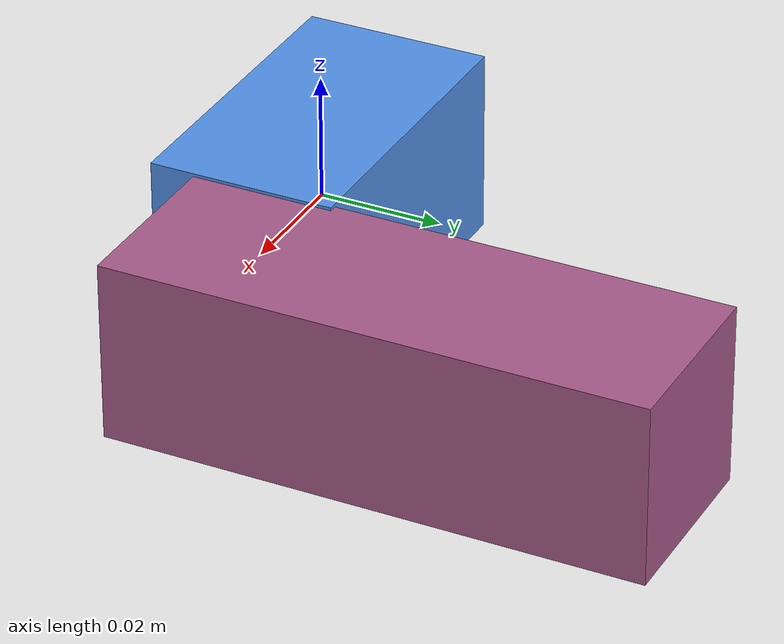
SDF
<sdf version="1.4"><world name="default"><model name="object0"><link name="link1"><pose>0 0 0 0 0 0</pose><inertial><pose>0 0 0 0 0 0</pose><mass>0.028079124419671073</mass><inertia><ixx>4.211868662950661e-06</ixx><ixy>0</ixy><iyy>8.432702457628954e-06</iyy><ixz>0</ixz><iyz>0</iyz><izz>8.432702457628954e-06</izz></inertia></inertial><visual name="link1_visual"><pose>0 0  0 0 0 0</pose><geometry><box><size>0.051998378554946434 0.03 0.03</size></box></geometry><material><diffuse>0.32667551442856974 0.5763946194922474 0.9129795138083567 1</diffuse></material></visual><collision><pose>0 0  0 0 0 0</pose><geometry><box><size>0.051998378554946434 0.03 0.03</size></box></geometry></collision></link><link name="link2"><pose>0.039698638210516404 0.03538307213945714 0 0 0 0</pose><inertial><pose>0 0 0 0 0 0</pose><mass>0.04667335417044622</mass><inertia><ixx>3.232718781334857e-05</ixx><ixy>0</ixy><iyy>6.771525800895572e-06</iyy><ixz>0</ixz><iyz>0</iyz><izz>3.255666513801993e-05</izz></inertia></inertial><visual name="link2_visual"><pose>0 0  0 0 0 0</pose><geometry><box><size>0.03 0.0864321373526782 0.028999999999999998</size></box></geometry><material><diffuse>0.6633737962783643 0.3568648445255156 0.5486893905143159 1</diffuse></material></visual><collision><pose>0 0  0 0 0 0</pose><geometry><box><size>0.03 0.0864321373526782 0.028999999999999998</size></box></geometry></collision></link><joint name="link_joint_0" type="fixed"><parent>link1</parent><child>link2</child><pose>0 0 0 0 0 0</pose><axis><xyz>0 0 1</xyz></axis></joint></model></world></sdf>
